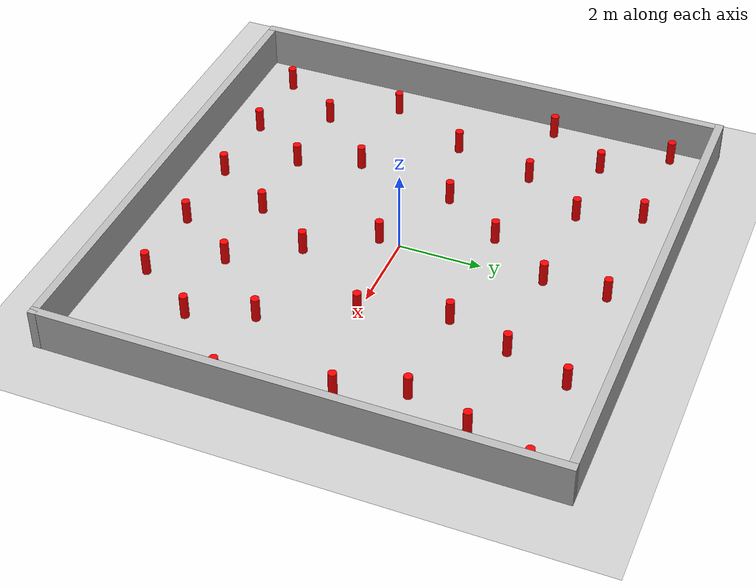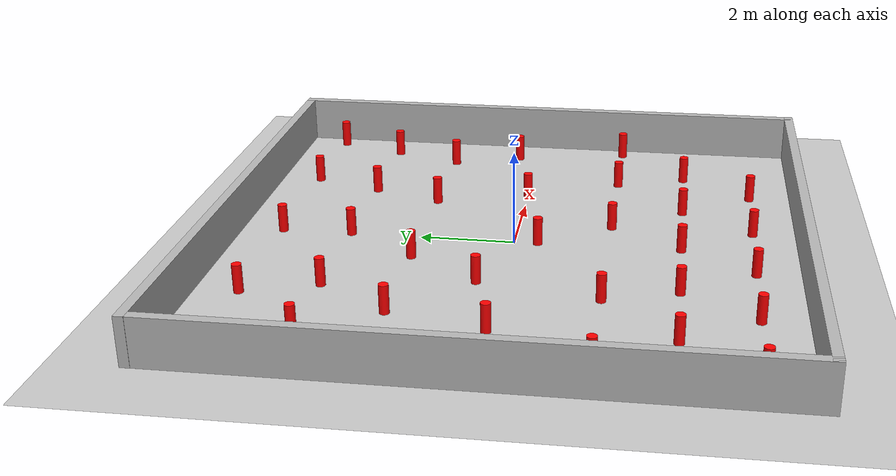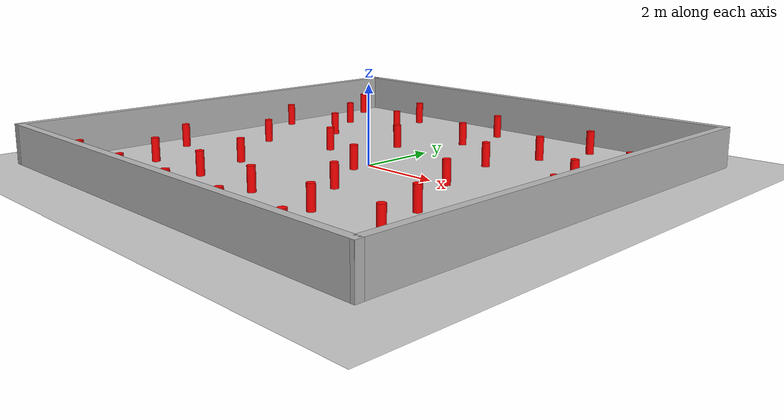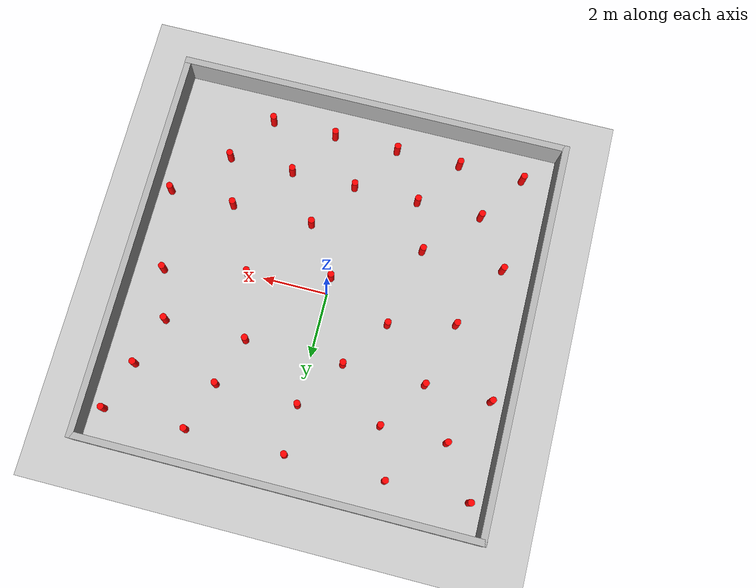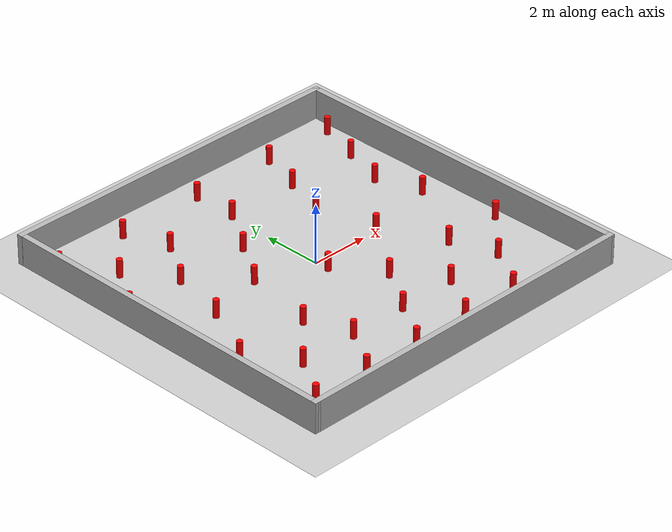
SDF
<?xml version="1.0" ?>
<sdf version="1.6">
  <world name="dwa_test_world">

    <include>
      <uri>model://ground_plane</uri>
    </include>

    <include>
      <uri>model://sun</uri>
    </include>

    <gui fullscreen='0'>
      <camera name='top_view'>
        <pose>0 0 12 0 1.57 0</pose>
      </camera>
    </gui>

    <model name="wall_1">
      <static>true</static>
      <link name="link">
        <pose>0 6 0.5 0 0 0</pose>
        <collision name="collision"><geometry><box><size>12.2 0.2 1</size></box></geometry></collision>
        <visual name="visual"><geometry><box><size>12.2 0.2 1</size></box></geometry></visual>
      </link>
    </model>

    <model name="wall_2">
      <static>true</static>
      <link name="link">
        <pose>0 -6 0.5 0 0 0</pose>
        <collision name="collision"><geometry><box><size>12.2 0.2 1</size></box></geometry></collision>
        <visual name="visual"><geometry><box><size>12.2 0.2 1</size></box></geometry></visual>
      </link>
    </model>

    <model name="wall_3">
      <static>true</static>
      <link name="link">
        <pose>6 0 0.5 0 0 1.57</pose>
        <collision name="collision"><geometry><box><size>12.2 0.2 1</size></box></geometry></collision>
        <visual name="visual"><geometry><box><size>12.2 0.2 1</size></box></geometry></visual>
      </link>
    </model>

    <model name="wall_4">
      <static>true</static>
      <link name="link">
        <pose>-6 0 0.5 0 0 1.57</pose>
        <collision name="collision"><geometry><box><size>12.2 0.2 1</size></box></geometry></collision>
        <visual name="visual"><geometry><box><size>12.2 0.2 1</size></box></geometry></visual>
      </link>
    </model>

    <model name="obs_1"><static>1</static><link name="l"><pose>-5 -5 0.3 0 0 0</pose><collision name="c"><geometry><cylinder><radius>0.1</radius><length>0.6</length></cylinder></geometry></collision><visual name="v"><geometry><cylinder><radius>0.1</radius><length>0.6</length></cylinder></geometry><material><ambient>1 0 0 1</ambient></material></visual></link></model>
    <model name="obs_2"><static>1</static><link name="l"><pose>-3 -5 0.3 0 0 0</pose><collision name="c"><geometry><cylinder><radius>0.1</radius><length>0.6</length></cylinder></geometry></collision><visual name="v"><geometry><cylinder><radius>0.1</radius><length>0.6</length></cylinder></geometry><material><ambient>1 0 0 1</ambient></material></visual></link></model>
    <model name="obs_3"><static>1</static><link name="l"><pose>-1 -5 0.3 0 0 0</pose><collision name="c"><geometry><cylinder><radius>0.1</radius><length>0.6</length></cylinder></geometry></collision><visual name="v"><geometry><cylinder><radius>0.1</radius><length>0.6</length></cylinder></geometry><material><ambient>1 0 0 1</ambient></material></visual></link></model>
    <model name="obs_4"><static>1</static><link name="l"><pose>1 -5 0.3 0 0 0</pose><collision name="c"><geometry><cylinder><radius>0.1</radius><length>0.6</length></cylinder></geometry></collision><visual name="v"><geometry><cylinder><radius>0.1</radius><length>0.6</length></cylinder></geometry><material><ambient>1 0 0 1</ambient></material></visual></link></model>
    <model name="obs_5"><static>1</static><link name="l"><pose>3 -5 0.3 0 0 0</pose><collision name="c"><geometry><cylinder><radius>0.1</radius><length>0.6</length></cylinder></geometry></collision><visual name="v"><geometry><cylinder><radius>0.1</radius><length>0.6</length></cylinder></geometry><material><ambient>1 0 0 1</ambient></material></visual></link></model>

    <model name="obs_6"><static>1</static><link name="l"><pose>-4 -3.5 0.3 0 0 0</pose><collision name="c"><geometry><cylinder><radius>0.1</radius><length>0.6</length></cylinder></geometry></collision><visual name="v"><geometry><cylinder><radius>0.1</radius><length>0.6</length></cylinder></geometry><material><ambient>1 0 0 1</ambient></material></visual></link></model>
    <model name="obs_7"><static>1</static><link name="l"><pose>-2 -3.5 0.3 0 0 0</pose><collision name="c"><geometry><cylinder><radius>0.1</radius><length>0.6</length></cylinder></geometry></collision><visual name="v"><geometry><cylinder><radius>0.1</radius><length>0.6</length></cylinder></geometry><material><ambient>1 0 0 1</ambient></material></visual></link></model>
    <model name="obs_8"><static>1</static><link name="l"><pose>0 -3.5 0.3 0 0 0</pose><collision name="c"><geometry><cylinder><radius>0.1</radius><length>0.6</length></cylinder></geometry></collision><visual name="v"><geometry><cylinder><radius>0.1</radius><length>0.6</length></cylinder></geometry><material><ambient>1 0 0 1</ambient></material></visual></link></model>
    <model name="obs_9"><static>true</static><link name="l"><pose>2 -3.5 0.3 0 0 0</pose><collision name="c"><geometry><cylinder><radius>0.1</radius><length>0.6</length></cylinder></geometry></collision><visual name="v"><geometry><cylinder><radius>0.1</radius><length>0.6</length></cylinder></geometry><material><ambient>1 0 0 1</ambient></material></visual></link></model>
    <model name="obs_10"><static>1</static><link name="l"><pose>4 -3.5 0.3 0 0 0</pose><collision name="c"><geometry><cylinder><radius>0.1</radius><length>0.6</length></cylinder></geometry></collision><visual name="v"><geometry><cylinder><radius>0.1</radius><length>0.6</length></cylinder></geometry><material><ambient>1 0 0 1</ambient></material></visual></link></model>

    <model name="obs_11"><static>1</static><link name="l"><pose>-5 -2 0.3 0 0 0</pose><collision name="c"><geometry><cylinder><radius>0.1</radius><length>0.6</length></cylinder></geometry></collision><visual name="v"><geometry><cylinder><radius>0.1</radius><length>0.6</length></cylinder></geometry><material><ambient>1 0 0 1</ambient></material></visual></link></model>
    <model name="obs_12"><static>1</static><link name="l"><pose>-2.5 -2 0.3 0 0 0</pose><collision name="c"><geometry><cylinder><radius>0.1</radius><length>0.6</length></cylinder></geometry></collision><visual name="v"><geometry><cylinder><radius>0.1</radius><length>0.6</length></cylinder></geometry><material><ambient>1 0 0 1</ambient></material></visual></link></model>
    <model name="obs_13"><static>1</static><link name="l"><pose>1 -2 0.3 0 0 0</pose><collision name="c"><geometry><cylinder><radius>0.1</radius><length>0.6</length></cylinder></geometry></collision><visual name="v"><geometry><cylinder><radius>0.1</radius><length>0.6</length></cylinder></geometry><material><ambient>1 0 0 1</ambient></material></visual></link></model>
    <model name="obs_14"><static>1</static><link name="l"><pose>3.5 -2 0.3 0 0 0</pose><collision name="c"><geometry><cylinder><radius>0.1</radius><length>0.6</length></cylinder></geometry></collision><visual name="v"><geometry><cylinder><radius>0.1</radius><length>0.6</length></cylinder></geometry><material><ambient>1 0 0 1</ambient></material></visual></link></model>
    <model name="obs_15"><static>1</static><link name="l"><pose>5.5 -2 0.3 0 0 0</pose><collision name="c"><geometry><cylinder><radius>0.1</radius><length>0.6</length></cylinder></geometry></collision><visual name="v"><geometry><cylinder><radius>0.1</radius><length>0.6</length></cylinder></geometry><material><ambient>1 0 0 1</ambient></material></visual></link></model>

    <model name="obs_16"><static>1</static><link name="l"><pose>-4 0 0.3 0 0 0</pose><collision name="c"><geometry><cylinder><radius>0.1</radius><length>0.6</length></cylinder></geometry></collision><visual name="v"><geometry><cylinder><radius>0.1</radius><length>0.6</length></cylinder></geometry><material><ambient>1 0 0 1</ambient></material></visual></link></model>
    <model name="obs_17"><static>1</static><link name="l"><pose>-2 0.5 0.3 0 0 0</pose><collision name="c"><geometry><cylinder><radius>0.1</radius><length>0.6</length></cylinder></geometry></collision><visual name="v"><geometry><cylinder><radius>0.1</radius><length>0.6</length></cylinder></geometry><material><ambient>1 0 0 1</ambient></material></visual></link></model>
    <model name="obs_18"><static>1</static><link name="l"><pose>0 -0.5 0.3 0 0 0</pose><collision name="c"><geometry><cylinder><radius>0.1</radius><length>0.6</length></cylinder></geometry></collision><visual name="v"><geometry><cylinder><radius>0.1</radius><length>0.6</length></cylinder></geometry><material><ambient>1 0 0 1</ambient></material></visual></link></model>
    <model name="obs_19"><static>1</static><link name="l"><pose>2.5 0 0.3 0 0 0</pose><collision name="c"><geometry><cylinder><radius>0.1</radius><length>0.6</length></cylinder></geometry></collision><visual name="v"><geometry><cylinder><radius>0.1</radius><length>0.6</length></cylinder></geometry><material><ambient>1 0 0 1</ambient></material></visual></link></model>
    <model name="obs_20"><static>1</static><link name="l"><pose>5 0.5 0.3 0 0 0</pose><collision name="c"><geometry><cylinder><radius>0.1</radius><length>0.6</length></cylinder></geometry></collision><visual name="v"><geometry><cylinder><radius>0.1</radius><length>0.6</length></cylinder></geometry><material><ambient>1 0 0 1</ambient></material></visual></link></model>

    <model name="obs_21"><static>1</static><link name="l"><pose>-5.5 2 0.3 0 0 0</pose><collision name="c"><geometry><cylinder><radius>0.1</radius><length>0.6</length></cylinder></geometry></collision><visual name="v"><geometry><cylinder><radius>0.1</radius><length>0.6</length></cylinder></geometry><material><ambient>1 0 0 1</ambient></material></visual></link></model>
    <model name="obs_22"><static>1</static><link name="l"><pose>-3.5 2 0.3 0 0 0</pose><collision name="c"><geometry><cylinder><radius>0.1</radius><length>0.6</length></cylinder></geometry></collision><visual name="v"><geometry><cylinder><radius>0.1</radius><length>0.6</length></cylinder></geometry><material><ambient>1 0 0 1</ambient></material></visual></link></model>
    <model name="obs_23"><static>1</static><link name="l"><pose>-1 2 0.3 0 0 0</pose><collision name="c"><geometry><cylinder><radius>0.1</radius><length>0.6</length></cylinder></geometry></collision><visual name="v"><geometry><cylinder><radius>0.1</radius><length>0.6</length></cylinder></geometry><material><ambient>1 0 0 1</ambient></material></visual></link></model>
    <model name="obs_24"><static>1</static><link name="l"><pose>2 2 0.3 0 0 0</pose><collision name="c"><geometry><cylinder><radius>0.1</radius><length>0.6</length></cylinder></geometry></collision><visual name="v"><geometry><cylinder><radius>0.1</radius><length>0.6</length></cylinder></geometry><material><ambient>1 0 0 1</ambient></material></visual></link></model>
    <model name="obs_25"><static>1</static><link name="l"><pose>4.5 2 0.3 0 0 0</pose><collision name="c"><geometry><cylinder><radius>0.1</radius><length>0.6</length></cylinder></geometry></collision><visual name="v"><geometry><cylinder><radius>0.1</radius><length>0.6</length></cylinder></geometry><material><ambient>1 0 0 1</ambient></material></visual></link></model>

    <model name="obs_26"><static>1</static><link name="l"><pose>-4.5 3.5 0.3 0 0 0</pose><collision name="c"><geometry><cylinder><radius>0.1</radius><length>0.6</length></cylinder></geometry></collision><visual name="v"><geometry><cylinder><radius>0.1</radius><length>0.6</length></cylinder></geometry><material><ambient>1 0 0 1</ambient></material></visual></link></model>
    <model name="obs_27"><static>1</static><link name="l"><pose>-2.5 3.5 0.3 0 0 0</pose><collision name="c"><geometry><cylinder><radius>0.1</radius><length>0.6</length></cylinder></geometry></collision><visual name="v"><geometry><cylinder><radius>0.1</radius><length>0.6</length></cylinder></geometry><material><ambient>1 0 0 1</ambient></material></visual></link></model>
    <model name="obs_28"><static>1</static><link name="l"><pose>0 3.5 0.3 0 0 0</pose><collision name="c"><geometry><cylinder><radius>0.1</radius><length>0.6</length></cylinder></geometry></collision><visual name="v"><geometry><cylinder><radius>0.1</radius><length>0.6</length></cylinder></geometry><material><ambient>1 0 0 1</ambient></material></visual></link></model>
    <model name="obs_29"><static>1</static><link name="l"><pose>2.5 3.5 0.3 0 0 0</pose><collision name="c"><geometry><cylinder><radius>0.1</radius><length>0.6</length></cylinder></geometry></collision><visual name="v"><geometry><cylinder><radius>0.1</radius><length>0.6</length></cylinder></geometry><material><ambient>1 0 0 1</ambient></material></visual></link></model>
    <model name="obs_30"><static>1</static><link name="l"><pose>5 3.5 0.3 0 0 0</pose><collision name="c"><geometry><cylinder><radius>0.1</radius><length>0.6</length></cylinder></geometry></collision><visual name="v"><geometry><cylinder><radius>0.1</radius><length>0.6</length></cylinder></geometry><material><ambient>1 0 0 1</ambient></material></visual></link></model>

    <model name="obs_31"><static>1</static><link name="l"><pose>-5.5 5 0.3 0 0 0</pose><collision name="c"><geometry><cylinder><radius>0.1</radius><length>0.6</length></cylinder></geometry></collision><visual name="v"><geometry><cylinder><radius>0.1</radius><length>0.6</length></cylinder></geometry><material><ambient>1 0 0 1</ambient></material></visual></link></model>
    <model name="obs_32"><static>1</static><link name="l"><pose>-3 5 0.3 0 0 0</pose><collision name="c"><geometry><cylinder><radius>0.1</radius><length>0.6</length></cylinder></geometry></collision><visual name="v"><geometry><cylinder><radius>0.1</radius><length>0.6</length></cylinder></geometry><material><ambient>1 0 0 1</ambient></material></visual></link></model>
    <model name="obs_33"><static>1</static><link name="l"><pose>0 5 0.3 0 0 0</pose><collision name="c"><geometry><cylinder><radius>0.1</radius><length>0.6</length></cylinder></geometry></collision><visual name="v"><geometry><cylinder><radius>0.1</radius><length>0.6</length></cylinder></geometry><material><ambient>1 0 0 1</ambient></material></visual></link></model>
    <model name="obs_34"><static>1</static><link name="l"><pose>3 5 0.3 0 0 0</pose><collision name="c"><geometry><cylinder><radius>0.1</radius><length>0.6</length></cylinder></geometry></collision><visual name="v"><geometry><cylinder><radius>0.1</radius><length>0.6</length></cylinder></geometry><material><ambient>1 0 0 1</ambient></material></visual></link></model>
    <model name="obs_35"><static>1</static><link name="l"><pose>5.5 5 0.3 0 0 0</pose><collision name="c"><geometry><cylinder><radius>0.1</radius><length>0.6</length></cylinder></geometry></collision><visual name="v"><geometry><cylinder><radius>0.1</radius><length>0.6</length></cylinder></geometry><material><ambient>1 0 0 1</ambient></material></visual></link></model>

  </world>
</sdf>
